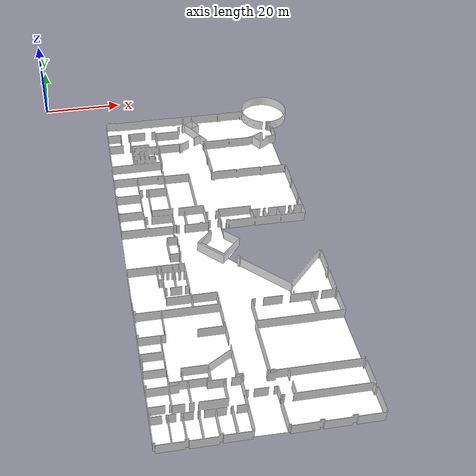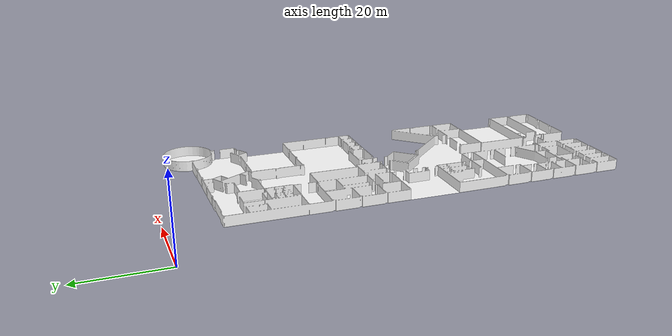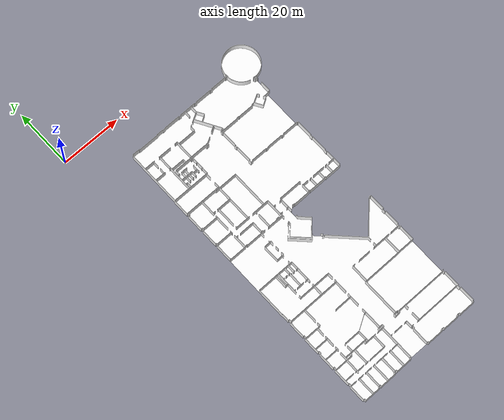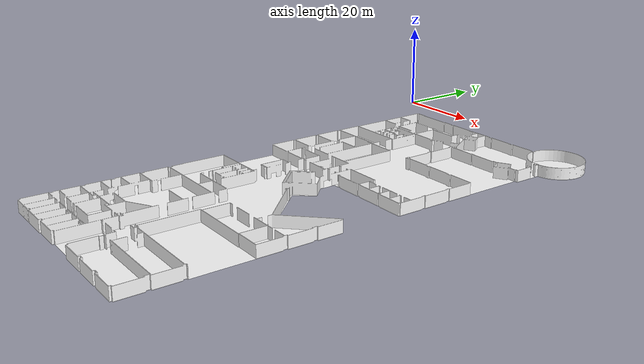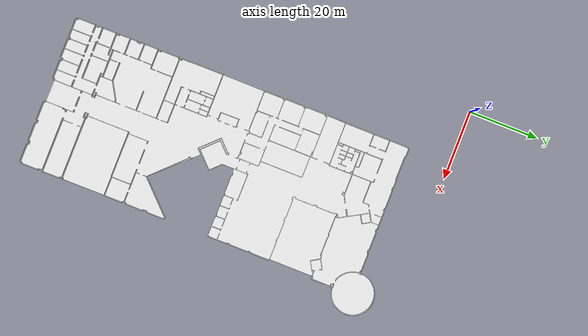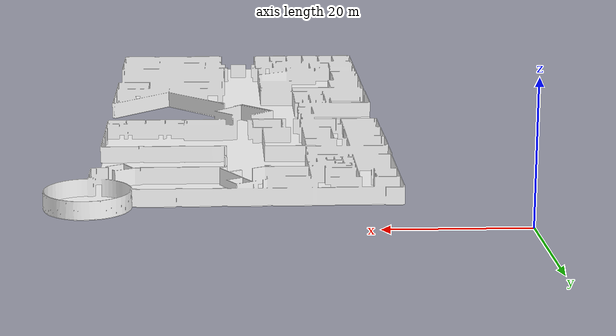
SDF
<?xml version='1.0' encoding='utf-8'?>
<sdf version="1.7">
  <model name="library_L02">
    <static>true</static>
    <link name="floor_1">
      <visual name="visual">
        <geometry>
          <mesh>
            <uri>model://library_L02/meshes/floor_1.obj</uri>
          </mesh>
        </geometry>
        <material>
          <diffuse>1.0 1.0 1.0</diffuse>
          <specular>0.1 0.1 0.1</specular>
          <pbr>
            <metal>
              <metalness>0.0</metalness>
              <albedo_map>model://library_L02/meshes/blue_linoleum.png</albedo_map>
            </metal>
          </pbr>
          <script>
            <uri>model://library_L02/meshes/</uri>
            <name>floor_1_Diffuse</name>
          </script>
        </material>
      </visual>
      <collision name="collision">
        <geometry>
          <mesh>
            <uri>model://library_L02/meshes/floor_1.obj</uri>
          </mesh>
        </geometry>
        <surface>
          <contact>
            <collide_bitmask>0x01</collide_bitmask>
          </contact>
        </surface>
      </collision>
    </link>
    <link name="wall_1">
      <visual name="wall_1">
        <geometry>
          <mesh>
            <uri>model://library_L02/meshes/wall_1.obj</uri>
          </mesh>
        </geometry>
        <transparency>0.0</transparency>
        <material>
          <diffuse>1.0 1.0 1.0</diffuse>
          <specular>0.1 0.1 0.1</specular>
          <pbr>
            <metal>
              <metalness>0.0</metalness>
              <albedo_map>model://library_L02/meshes/default.png</albedo_map>
            </metal>
          </pbr>
          <script>
            <uri>model://library_L02/meshes/</uri>
            <name>wall_1_Diffuse</name>
          </script>
        </material>
      </visual>
      <collision name="collision">
        <geometry>
          <mesh>
            <uri>model://library_L02/meshes/wall_1.obj</uri>
          </mesh>
        </geometry>
        <surface>
          <contact>
            <collide_bitmask>0x01</collide_bitmask>
          </contact>
        </surface>
      </collision>
      <pose>15.35663853937198 -111.66535302243952 0 0 0 0</pose>
    </link>
  </model>
</sdf>
